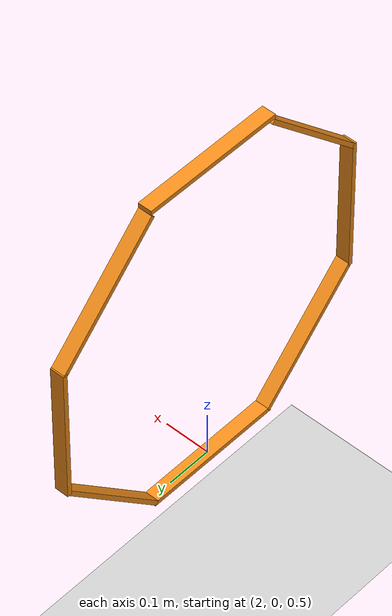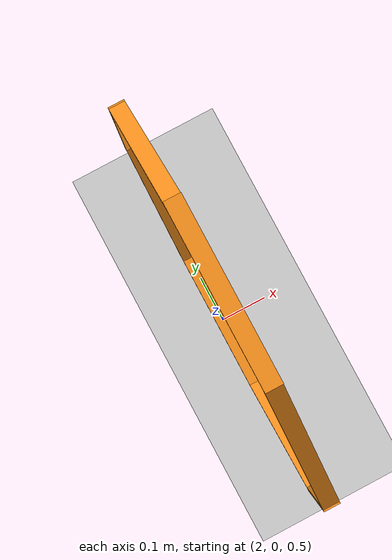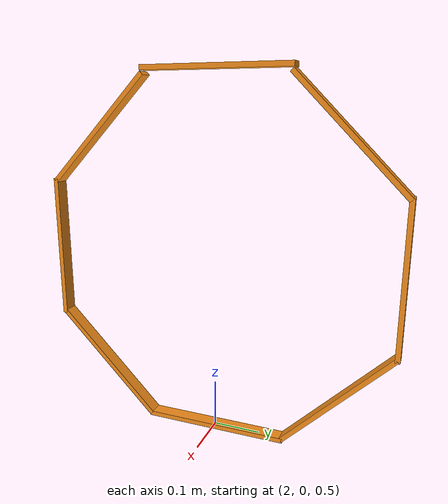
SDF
<?xml version="1.0"?>
<sdf version="1.5">
  <world name="default">
    <gui>
      <camera name="user_camera">
        <pose>-8.89 -14.33 12.97 0.0 0.58 0.84</pose>
        <track_visual>
          <static>true</static>
          <use_model_frame>true</use_model_frame>
          <xyz>-3 0 1</xyz>
          <inherit_yaw>true</inherit_yaw>
        </track_visual>
      </camera>
    </gui>
    <spherical_coordinates>
      <latitude_deg>48.878922</latitude_deg>
      <longitude_deg>2.367782</longitude_deg>
    </spherical_coordinates>
    <physics type="ode">
      <real_time_update_rate>1000</real_time_update_rate>
      <max_step_size>0.001</max_step_size>
      <real_time_factor>1.0</real_time_factor>
      <max_contacts>20</max_contacts>
      <gravity>0 0 -9.81</gravity>
      <magnetic_field>0.1062e-6 20.8038e-6 -43.2881e-6</magnetic_field>
      <ode>
        <solver>
          <type>world</type>
          <min_step_size>0.0001</min_step_size>
          <iters>50</iters>
          <precon_iters>0</precon_iters>
          <sor>1.4</sor>
          <use_dynamic_moi_rescaling>1</use_dynamic_moi_rescaling>
        </solver>
        <constraints>
          <cfm>0</cfm>
          <erp>0.2</erp>
          <contact_max_correcting_vel>100.0</contact_max_correcting_vel>
          <contact_surface_layer>0.001</contact_surface_layer>
        </constraints>
      </ode>
    </physics>
    <atmosphere type="adiabatic">
      <temperature>298.15</temperature>
      <pressure>101325</pressure>
      <temperature_gradient>-0.0065</temperature_gradient>
    </atmosphere>
    <!--Drone description-->
    <plugin name="fwman" filename="libsphinx_fwman.so">
      <spawn_point name="default">
        <pose>0 0 0.2 0 0 0</pose>
      </spawn_point>
    </plugin>
    <!--Wind description-->
    <plugin name="wind" filename="libsphinx_wind.so">
      <!-- Wind mean speed in m/s. -->
      <magnitude_mean>0.0</magnitude_mean>
      <!-- Wind mean direction in decimal degrees. -->
      <direction_mean>0.0</direction_mean>
      <!-- Wind mean elevation in decimal degrees. -->
      <elevation_mean>0.0</elevation_mean>
      <!-- Lowpass filter time characteristics in seconds.
              A value of 0 seconds deactivate the filter. -->
      <magnitude_time_for_rise>10.0</magnitude_time_for_rise>
      <direction_time_for_rise>30.0</direction_time_for_rise>
      <elevation_time_for_rise>0.0</elevation_time_for_rise>
      <!-- Wind expressions where "val" is the mean value. -->
      <magnitude_expr>val*(1+0.05*sin(2*pi*time/15))</magnitude_expr>
      <direction_expr>360*time/60</direction_expr>
      <elevation_expr>0.03*noise()</elevation_expr>
    </plugin>
    <!--Scene description-->
    <include>
      <uri>model://sun</uri>
    </include>
    <include>
      <uri>model://ground_plane</uri>
    </include>

    <model name='right_straight'>
      <pose>2 -0.37 0.87 0 0 0</pose>
      <link name='right_straight::link'>
        <collision name='collision'>
          <geometry>
            <box>
              <size>0.03 0.01 0.31</size>
            </box>
          </geometry>
          <max_contacts>10</max_contacts>
          <surface>
            <contact>
              <ode/>
            </contact>
            <bounce/>
            <friction>
              <torsional>
                <ode/>
              </torsional>
              <ode/>
            </friction>
          </surface>
        </collision>
        <visual name='visual'>
          <geometry>
            <box>
              <size>0.03 0.01 0.31</size>
            </box>
          </geometry>
          <material>
            <script>
              <name>Gazebo/Orange</name>
              <uri>file://media/materials/scripts/gazebo.material</uri>
            </script>
          </material>
        </visual>
        <self_collide>0</self_collide>
        <enable_wind>0</enable_wind>
        <kinematic>1</kinematic>
        <gravity>0</gravity>
      </link>
    </model>

    <model name='left_straight'>
      <pose>2 0.37 0.87 0 0 0</pose>
      <link name='left_straight::link'>
        <collision name='collision'>
          <geometry>
            <box>
              <size>0.03 0.01 0.31</size>
            </box>
          </geometry>
          <max_contacts>10</max_contacts>
          <surface>
            <contact>
              <ode/>
            </contact>
            <bounce/>
            <friction>
              <torsional>
                <ode/>
              </torsional>
              <ode/>
            </friction>
          </surface>
        </collision>
        <visual name='visual'>
          <geometry>
            <box>
              <size>0.03 0.01 0.31</size>
            </box>
          </geometry>
          <material>
            <script>
              <name>Gazebo/Orange</name>
              <uri>file://media/materials/scripts/gazebo.material</uri>
            </script>
          </material>
        </visual>
        <self_collide>0</self_collide>
        <enable_wind>0</enable_wind>
        <kinematic>1</kinematic>
        <gravity>0</gravity>
      </link>
    </model>

    <model name='upper_right_diagonal'>
      <pose>2 -0.26 1.13 5.5 0 0</pose>
      <link name='upper_left_diagonal::link'>
        <collision name='collision'>
          <geometry>
            <box>
              <size>0.03 0.01 0.31</size>
            </box>
          </geometry>
          <max_contacts>10</max_contacts>
          <surface>
            <contact>
              <ode/>
            </contact>
            <bounce/>
            <friction>
              <torsional>
                <ode/>
              </torsional>
              <ode/>
            </friction>
          </surface>
        </collision>
        <visual name='visual'>
          <geometry>
            <box>
              <size>0.03 0.01 0.31</size>
            </box>
          </geometry>
          <material>
            <script>
              <name>Gazebo/Orange</name>
              <uri>file://media/materials/scripts/gazebo.material</uri>
            </script>
          </material>
        </visual>
        <self_collide>0</self_collide>
        <enable_wind>0</enable_wind>
        <kinematic>1</kinematic>
        <gravity>0</gravity>
      </link>
    </model>

    <model name='upper_left_diagonal'>
      <pose>2 0.26 1.13 0.785 0 0</pose>
      <link name='upper_left_diagonal::link'>
        <collision name='collision'>
          <geometry>
            <box>
              <size>0.03 0.01 0.31</size>
            </box>
          </geometry>
          <max_contacts>10</max_contacts>
          <surface>
            <contact>
              <ode/>
            </contact>
            <bounce/>
            <friction>
              <torsional>
                <ode/>
              </torsional>
              <ode/>
            </friction>
          </surface>
        </collision>
        <visual name='visual'>
          <geometry>
            <box>
              <size>0.03 0.01 0.31</size>
            </box>
          </geometry>
          <material>
            <script>
              <name>Gazebo/Orange</name>
              <uri>file://media/materials/scripts/gazebo.material</uri>
            </script>
          </material>
        </visual>
        <self_collide>0</self_collide>
        <enable_wind>0</enable_wind>
        <kinematic>1</kinematic>
        <gravity>0</gravity>
      </link>
    </model>

    <model name='lower_right_diagonal'>
      <pose>2 -0.26 0.61 0.785 0 0</pose>
      <link name='lower_right_diagonal::link'>
        <collision name='collision'>
          <geometry>
            <box>
              <size>0.03 0.01 0.31</size>
            </box>
          </geometry>
          <max_contacts>10</max_contacts>
          <surface>
            <contact>
              <ode/>
            </contact>
            <bounce/>
            <friction>
              <torsional>
                <ode/>
              </torsional>
              <ode/>
            </friction>
          </surface>
        </collision>
        <visual name='visual'>
          <geometry>
            <box>
              <size>0.03 0.01 0.31</size>
            </box>
          </geometry>
          <material>
            <script>
              <name>Gazebo/Orange</name>
              <uri>file://media/materials/scripts/gazebo.material</uri>
            </script>
          </material>
        </visual>
        <self_collide>0</self_collide>
        <enable_wind>0</enable_wind>
        <kinematic>1</kinematic>
        <gravity>0</gravity>
      </link>
    </model>

    <model name='lower_left_diagonal'>
      <pose>2 0.26 0.61 5.5 0 0</pose>
      <link name='lower_left_diagonal::link'>
        <collision name='collision'>
          <geometry>
            <box>
              <size>0.03 0.01 0.31</size>
            </box>
          </geometry>
          <max_contacts>10</max_contacts>
          <surface>
            <contact>
              <ode/>
            </contact>
            <bounce/>
            <friction>
              <torsional>
                <ode/>
              </torsional>
              <ode/>
            </friction>
          </surface>
        </collision>
        <visual name='visual'>
          <geometry>
            <box>
              <size>0.03 0.01 0.31</size>
            </box>
          </geometry>
          <material>
            <script>
              <name>Gazebo/Orange</name>
              <uri>file://media/materials/scripts/gazebo.material</uri>
            </script>
          </material>
        </visual>
        <self_collide>0</self_collide>
        <enable_wind>0</enable_wind>
        <kinematic>1</kinematic>
        <gravity>0</gravity>
      </link>
    </model>

    <model name='upper_flat'>
      <pose>2 0 1.25 1.57 0 0</pose>
      <link name='upper_flat::link'>
        <collision name='collision'>
          <geometry>
            <box>
              <size>0.03 0.01 0.31</size>
            </box>
          </geometry>
          <max_contacts>10</max_contacts>
          <surface>
            <contact>
              <ode/>
            </contact>
            <bounce/>
            <friction>
              <torsional>
                <ode/>
              </torsional>
              <ode/>
            </friction>
          </surface>
        </collision>
        <visual name='visual'>
          <geometry>
            <box>
              <size>0.03 0.01 0.31</size>
            </box>
          </geometry>
          <material>
            <script>
              <name>Gazebo/Orange</name>
              <uri>file://media/materials/scripts/gazebo.material</uri>
            </script>
          </material>
        </visual>
        <self_collide>0</self_collide>
        <enable_wind>0</enable_wind>
        <kinematic>1</kinematic>
        <gravity>0</gravity>
      </link>
    </model>

    <model name='lower_flat'>
      <pose>2 0 0.5 1.57 0 0</pose>
      <link name='lower_flat::link'>
        <collision name='collision'>
          <geometry>
            <box>
              <size>0.03 0.01 0.31</size>
            </box>
          </geometry>
          <max_contacts>10</max_contacts>
          <surface>
            <contact>
              <ode/>
            </contact>
            <bounce/>
            <friction>
              <torsional>
                <ode/>
              </torsional>
              <ode/>
            </friction>
          </surface>
        </collision>
        <visual name='visual'>
          <geometry>
            <box>
              <size>0.03 0.01 0.31</size>
            </box>
          </geometry>
          <material>
            <script>
              <name>Gazebo/Orange</name>
              <uri>file://media/materials/scripts/gazebo.material</uri>
            </script>
          </material>
        </visual>
        <self_collide>0</self_collide>
        <enable_wind>0</enable_wind>
        <kinematic>1</kinematic>
        <gravity>0</gravity>
      </link>
    </model>

  </world>
</sdf>
